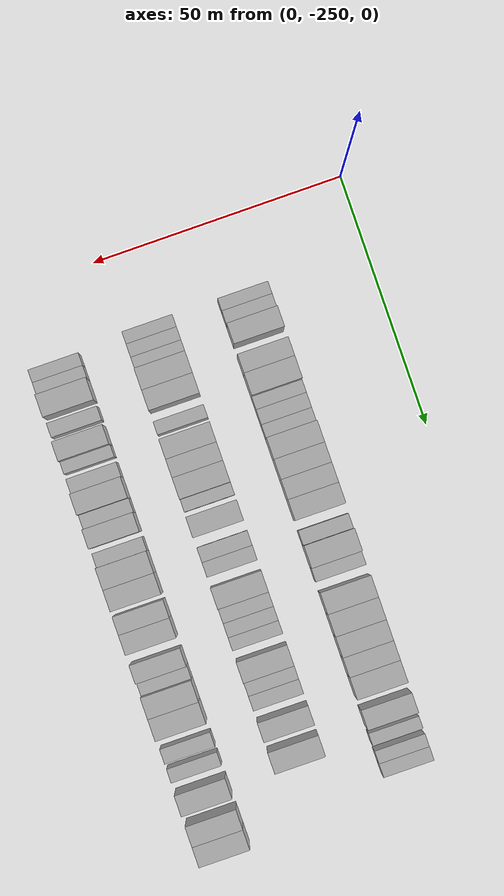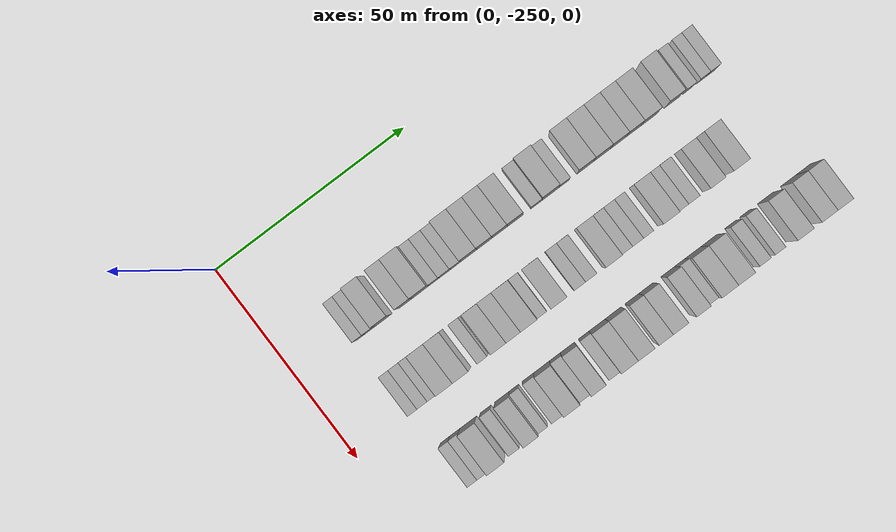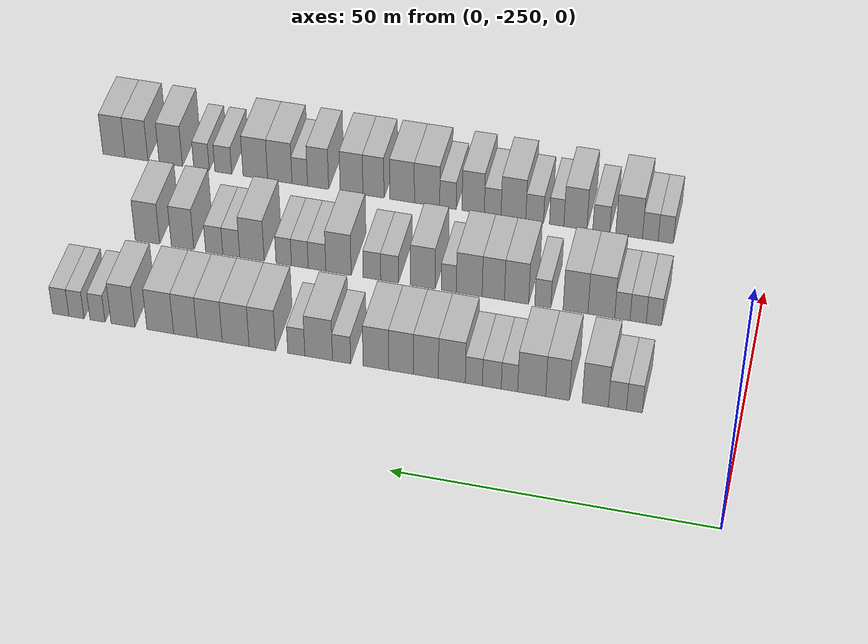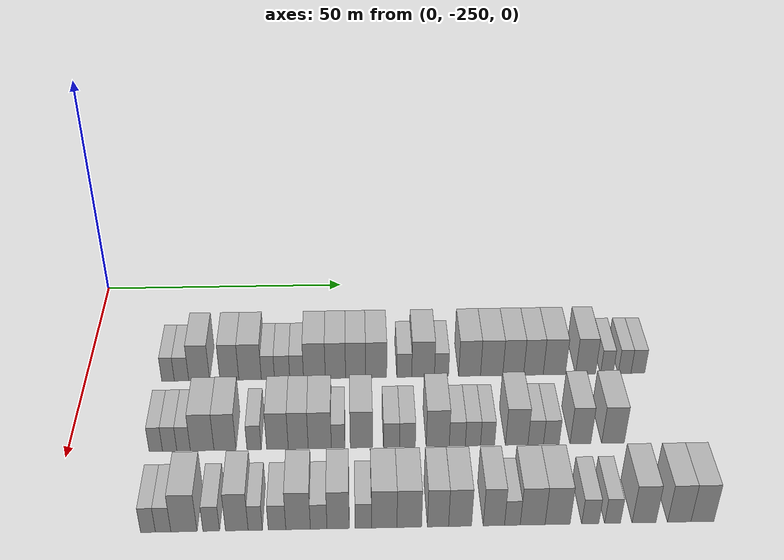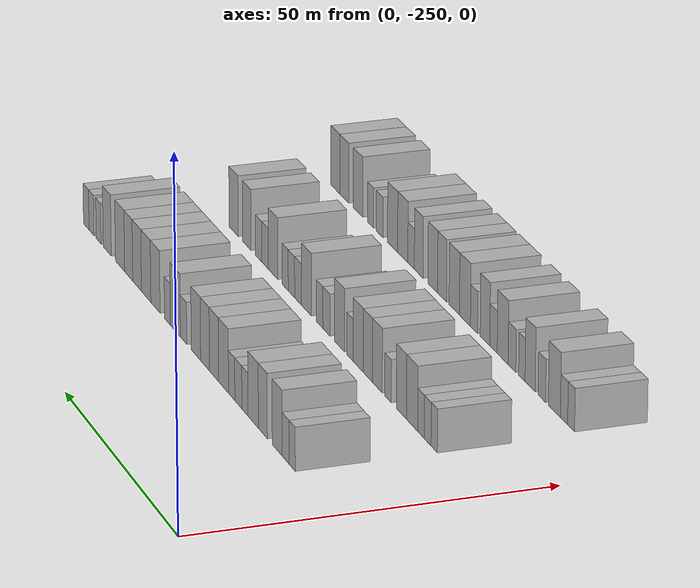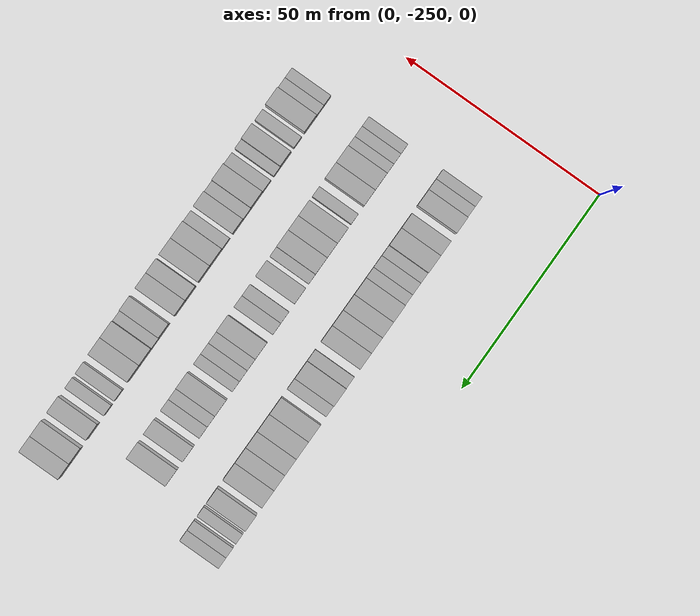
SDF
<sdf version="1.6">
 <world name="default">
  <model name="building_1">
   <static>1</static>
   <pose>25.0000 -233.7699 0 0.000000 0.000000 0.000000</pose>
   <link name="link">
    <pose>0 0 3.00 0 0 0</pose>
    <collision name="collision"><geometry><box><size>10.0000 2.4602 6.0000</size></box></geometry></collision>
    <visual name="visual">
     <cast_shadows>0</cast_shadows>
     <geometry><box><size>10.0000 2.4602 6.0000</size></box></geometry>
     <material>
      <script>
       <uri>model://HANNAS_wall/materials/scripts</uri>
       <uri>model://HANNAS_wall/materials/textures</uri>
       <name>vrc/HANNAS_wall</name>
      </script>
     </material>
    </visual>
   </link>
  </model>
  <model name="building_2">
   <static>1</static>
   <pose>25.0000 -231.1276 0 0.000000 0.000000 0.000000</pose>
   <link name="link">
    <pose>0 0 3.00 0 0 0</pose>
    <collision name="collision"><geometry><box><size>10.0000 2.8243 6.0000</size></box></geometry></collision>
    <visual name="visual">
     <cast_shadows>0</cast_shadows>
     <geometry><box><size>10.0000 2.8243 6.0000</size></box></geometry>
     <material>
      <script>
       <uri>model://HANNAS_wall/materials/scripts</uri>
       <uri>model://HANNAS_wall/materials/textures</uri>
       <name>vrc/HANNAS_wall</name>
      </script>
     </material>
    </visual>
   </link>
  </model>
  <model name="building_3">
   <static>1</static>
   <pose>25.0000 -227.6758 0 0.000000 0.000000 0.000000</pose>
   <link name="link">
    <pose>0 0 4.50 0 0 0</pose>
    <collision name="collision"><geometry><box><size>10.0000 4.0794 9.0000</size></box></geometry></collision>
    <visual name="visual">
     <cast_shadows>0</cast_shadows>
     <geometry><box><size>10.0000 4.0794 9.0000</size></box></geometry>
     <material>
      <script>
       <uri>model://HANNAS_wall/materials/scripts</uri>
       <uri>model://HANNAS_wall/materials/textures</uri>
       <name>vrc/HANNAS_wall</name>
      </script>
     </material>
    </visual>
   </link>
  </model>
  <model name="building_4">
   <static>1</static>
   <pose>25.0000 -221.7807 0 0.000000 0.000000 0.000000</pose>
   <link name="link">
    <pose>0 0 4.50 0 0 0</pose>
    <collision name="collision"><geometry><box><size>10.0000 3.7108 9.0000</size></box></geometry></collision>
    <visual name="visual">
     <cast_shadows>0</cast_shadows>
     <geometry><box><size>10.0000 3.7108 9.0000</size></box></geometry>
     <material>
      <script>
       <uri>model://HANNAS_wall/materials/scripts</uri>
       <uri>model://HANNAS_wall/materials/textures</uri>
       <name>vrc/HANNAS_wall</name>
      </script>
     </material>
    </visual>
   </link>
  </model>
  <model name="building_5">
   <static>1</static>
   <pose>25.0000 -217.7213 0 0.000000 0.000000 0.000000</pose>
   <link name="link">
    <pose>0 0 4.50 0 0 0</pose>
    <collision name="collision"><geometry><box><size>10.0000 4.4080 9.0000</size></box></geometry></collision>
    <visual name="visual">
     <cast_shadows>0</cast_shadows>
     <geometry><box><size>10.0000 4.4080 9.0000</size></box></geometry>
     <material>
      <script>
       <uri>model://HANNAS_wall/materials/scripts</uri>
       <uri>model://HANNAS_wall/materials/textures</uri>
       <name>vrc/HANNAS_wall</name>
      </script>
     </material>
    </visual>
   </link>
  </model>
  <model name="building_6">
   <static>1</static>
   <pose>25.0000 -214.2284 0 0.000000 0.000000 0.000000</pose>
   <link name="link">
    <pose>0 0 3.00 0 0 0</pose>
    <collision name="collision"><geometry><box><size>10.0000 2.5777 6.0000</size></box></geometry></collision>
    <visual name="visual">
     <cast_shadows>0</cast_shadows>
     <geometry><box><size>10.0000 2.5777 6.0000</size></box></geometry>
     <material>
      <script>
       <uri>model://HANNAS_wall/materials/scripts</uri>
       <uri>model://HANNAS_wall/materials/textures</uri>
       <name>vrc/HANNAS_wall</name>
      </script>
     </material>
    </visual>
   </link>
  </model>
  <model name="building_7">
   <static>1</static>
   <pose>25.0000 -211.4436 0 0.000000 0.000000 0.000000</pose>
   <link name="link">
    <pose>0 0 3.00 0 0 0</pose>
    <collision name="collision"><geometry><box><size>10.0000 2.9918 6.0000</size></box></geometry></collision>
    <visual name="visual">
     <cast_shadows>0</cast_shadows>
     <geometry><box><size>10.0000 2.9918 6.0000</size></box></geometry>
     <material>
      <script>
       <uri>model://HANNAS_wall/materials/scripts</uri>
       <uri>model://HANNAS_wall/materials/textures</uri>
       <name>vrc/HANNAS_wall</name>
      </script>
     </material>
    </visual>
   </link>
  </model>
  <model name="building_8">
   <static>1</static>
   <pose>25.0000 -208.5960 0 0.000000 0.000000 0.000000</pose>
   <link name="link">
    <pose>0 0 3.00 0 0 0</pose>
    <collision name="collision"><geometry><box><size>10.0000 2.7034 6.0000</size></box></geometry></collision>
    <visual name="visual">
     <cast_shadows>0</cast_shadows>
     <geometry><box><size>10.0000 2.7034 6.0000</size></box></geometry>
     <material>
      <script>
       <uri>model://HANNAS_wall/materials/scripts</uri>
       <uri>model://HANNAS_wall/materials/textures</uri>
       <name>vrc/HANNAS_wall</name>
      </script>
     </material>
    </visual>
   </link>
  </model>
  <model name="building_9">
   <static>1</static>
   <pose>25.0000 -205.1038 0 0.000000 0.000000 0.000000</pose>
   <link name="link">
    <pose>0 0 4.50 0 0 0</pose>
    <collision name="collision"><geometry><box><size>10.0000 4.2810 9.0000</size></box></geometry></collision>
    <visual name="visual">
     <cast_shadows>0</cast_shadows>
     <geometry><box><size>10.0000 4.2810 9.0000</size></box></geometry>
     <material>
      <script>
       <uri>model://HANNAS_wall/materials/scripts</uri>
       <uri>model://HANNAS_wall/materials/textures</uri>
       <name>vrc/HANNAS_wall</name>
      </script>
     </material>
    </visual>
   </link>
  </model>
  <model name="building_10">
   <static>1</static>
   <pose>25.0000 -200.9737 0 0.000000 0.000000 0.000000</pose>
   <link name="link">
    <pose>0 0 4.50 0 0 0</pose>
    <collision name="collision"><geometry><box><size>10.0000 3.9793 9.0000</size></box></geometry></collision>
    <visual name="visual">
     <cast_shadows>0</cast_shadows>
     <geometry><box><size>10.0000 3.9793 9.0000</size></box></geometry>
     <material>
      <script>
       <uri>model://HANNAS_wall/materials/scripts</uri>
       <uri>model://HANNAS_wall/materials/textures</uri>
       <name>vrc/HANNAS_wall</name>
      </script>
     </material>
    </visual>
   </link>
  </model>
  <model name="building_11">
   <static>1</static>
   <pose>25.0000 -197.0114 0 0.000000 0.000000 0.000000</pose>
   <link name="link">
    <pose>0 0 4.50 0 0 0</pose>
    <collision name="collision"><geometry><box><size>10.0000 3.9452 9.0000</size></box></geometry></collision>
    <visual name="visual">
     <cast_shadows>0</cast_shadows>
     <geometry><box><size>10.0000 3.9452 9.0000</size></box></geometry>
     <material>
      <script>
       <uri>model://HANNAS_wall/materials/scripts</uri>
       <uri>model://HANNAS_wall/materials/textures</uri>
       <name>vrc/HANNAS_wall</name>
      </script>
     </material>
    </visual>
   </link>
  </model>
  <model name="building_12">
   <static>1</static>
   <pose>25.0000 -192.9783 0 0.000000 0.000000 0.000000</pose>
   <link name="link">
    <pose>0 0 4.50 0 0 0</pose>
    <collision name="collision"><geometry><box><size>10.0000 4.1212 9.0000</size></box></geometry></collision>
    <visual name="visual">
     <cast_shadows>0</cast_shadows>
     <geometry><box><size>10.0000 4.1212 9.0000</size></box></geometry>
     <material>
      <script>
       <uri>model://HANNAS_wall/materials/scripts</uri>
       <uri>model://HANNAS_wall/materials/textures</uri>
       <name>vrc/HANNAS_wall</name>
      </script>
     </material>
    </visual>
   </link>
  </model>
  <model name="building_13">
   <static>1</static>
   <pose>25.0000 -187.4523 0 0.000000 0.000000 0.000000</pose>
   <link name="link">
    <pose>0 0 3.00 0 0 0</pose>
    <collision name="collision"><geometry><box><size>10.0000 2.9307 6.0000</size></box></geometry></collision>
    <visual name="visual">
     <cast_shadows>0</cast_shadows>
     <geometry><box><size>10.0000 2.9307 6.0000</size></box></geometry>
     <material>
      <script>
       <uri>model://HANNAS_wall/materials/scripts</uri>
       <uri>model://HANNAS_wall/materials/textures</uri>
       <name>vrc/HANNAS_wall</name>
      </script>
     </material>
    </visual>
   </link>
  </model>
  <model name="building_14">
   <static>1</static>
   <pose>25.0000 -183.7499 0 0.000000 0.000000 0.000000</pose>
   <link name="link">
    <pose>0 0 4.50 0 0 0</pose>
    <collision name="collision"><geometry><box><size>10.0000 4.4742 9.0000</size></box></geometry></collision>
    <visual name="visual">
     <cast_shadows>0</cast_shadows>
     <geometry><box><size>10.0000 4.4742 9.0000</size></box></geometry>
     <material>
      <script>
       <uri>model://HANNAS_wall/materials/scripts</uri>
       <uri>model://HANNAS_wall/materials/textures</uri>
       <name>vrc/HANNAS_wall</name>
      </script>
     </material>
    </visual>
   </link>
  </model>
  <model name="building_15">
   <static>1</static>
   <pose>25.0000 -180.1247 0 0.000000 0.000000 0.000000</pose>
   <link name="link">
    <pose>0 0 3.00 0 0 0</pose>
    <collision name="collision"><geometry><box><size>10.0000 2.7761 6.0000</size></box></geometry></collision>
    <visual name="visual">
     <cast_shadows>0</cast_shadows>
     <geometry><box><size>10.0000 2.7761 6.0000</size></box></geometry>
     <material>
      <script>
       <uri>model://HANNAS_wall/materials/scripts</uri>
       <uri>model://HANNAS_wall/materials/textures</uri>
       <name>vrc/HANNAS_wall</name>
      </script>
     </material>
    </visual>
   </link>
  </model>
  <model name="building_16">
   <static>1</static>
   <pose>25.0000 -174.5823 0 0.000000 0.000000 0.000000</pose>
   <link name="link">
    <pose>0 0 4.50 0 0 0</pose>
    <collision name="collision"><geometry><box><size>10.0000 4.3088 9.0000</size></box></geometry></collision>
    <visual name="visual">
     <cast_shadows>0</cast_shadows>
     <geometry><box><size>10.0000 4.3088 9.0000</size></box></geometry>
     <material>
      <script>
       <uri>model://HANNAS_wall/materials/scripts</uri>
       <uri>model://HANNAS_wall/materials/textures</uri>
       <name>vrc/HANNAS_wall</name>
      </script>
     </material>
    </visual>
   </link>
  </model>
  <model name="building_17">
   <static>1</static>
   <pose>25.0000 -170.2294 0 0.000000 0.000000 0.000000</pose>
   <link name="link">
    <pose>0 0 4.50 0 0 0</pose>
    <collision name="collision"><geometry><box><size>10.0000 4.3968 9.0000</size></box></geometry></collision>
    <visual name="visual">
     <cast_shadows>0</cast_shadows>
     <geometry><box><size>10.0000 4.3968 9.0000</size></box></geometry>
     <material>
      <script>
       <uri>model://HANNAS_wall/materials/scripts</uri>
       <uri>model://HANNAS_wall/materials/textures</uri>
       <name>vrc/HANNAS_wall</name>
      </script>
     </material>
    </visual>
   </link>
  </model>
  <model name="building_18">
   <static>1</static>
   <pose>25.0000 -165.9670 0 0.000000 0.000000 0.000000</pose>
   <link name="link">
    <pose>0 0 4.50 0 0 0</pose>
    <collision name="collision"><geometry><box><size>10.0000 4.1280 9.0000</size></box></geometry></collision>
    <visual name="visual">
     <cast_shadows>0</cast_shadows>
     <geometry><box><size>10.0000 4.1280 9.0000</size></box></geometry>
     <material>
      <script>
       <uri>model://HANNAS_wall/materials/scripts</uri>
       <uri>model://HANNAS_wall/materials/textures</uri>
       <name>vrc/HANNAS_wall</name>
      </script>
     </material>
    </visual>
   </link>
  </model>
  <model name="building_19">
   <static>1</static>
   <pose>25.0000 -161.9690 0 0.000000 0.000000 0.000000</pose>
   <link name="link">
    <pose>0 0 4.50 0 0 0</pose>
    <collision name="collision"><geometry><box><size>10.0000 3.8680 9.0000</size></box></geometry></collision>
    <visual name="visual">
     <cast_shadows>0</cast_shadows>
     <geometry><box><size>10.0000 3.8680 9.0000</size></box></geometry>
     <material>
      <script>
       <uri>model://HANNAS_wall/materials/scripts</uri>
       <uri>model://HANNAS_wall/materials/textures</uri>
       <name>vrc/HANNAS_wall</name>
      </script>
     </material>
    </visual>
   </link>
  </model>
  <model name="building_20">
   <static>1</static>
   <pose>25.0000 -157.8356 0 0.000000 0.000000 0.000000</pose>
   <link name="link">
    <pose>0 0 4.50 0 0 0</pose>
    <collision name="collision"><geometry><box><size>10.0000 4.3988 9.0000</size></box></geometry></collision>
    <visual name="visual">
     <cast_shadows>0</cast_shadows>
     <geometry><box><size>10.0000 4.3988 9.0000</size></box></geometry>
     <material>
      <script>
       <uri>model://HANNAS_wall/materials/scripts</uri>
       <uri>model://HANNAS_wall/materials/textures</uri>
       <name>vrc/HANNAS_wall</name>
      </script>
     </material>
    </visual>
   </link>
  </model>
  <model name="building_21">
   <static>1</static>
   <pose>25.0000 -151.6563 0 0.000000 0.000000 0.000000</pose>
   <link name="link">
    <pose>0 0 4.50 0 0 0</pose>
    <collision name="collision"><geometry><box><size>10.0000 3.9599 9.0000</size></box></geometry></collision>
    <visual name="visual">
     <cast_shadows>0</cast_shadows>
     <geometry><box><size>10.0000 3.9599 9.0000</size></box></geometry>
     <material>
      <script>
       <uri>model://HANNAS_wall/materials/scripts</uri>
       <uri>model://HANNAS_wall/materials/textures</uri>
       <name>vrc/HANNAS_wall</name>
      </script>
     </material>
    </visual>
   </link>
  </model>
  <model name="building_22">
   <static>1</static>
   <pose>25.0000 -147.4264 0 0.000000 0.000000 0.000000</pose>
   <link name="link">
    <pose>0 0 3.00 0 0 0</pose>
    <collision name="collision"><geometry><box><size>10.0000 2.5000 6.0000</size></box></geometry></collision>
    <visual name="visual">
     <cast_shadows>0</cast_shadows>
     <geometry><box><size>10.0000 2.5000 6.0000</size></box></geometry>
     <material>
      <script>
       <uri>model://HANNAS_wall/materials/scripts</uri>
       <uri>model://HANNAS_wall/materials/textures</uri>
       <name>vrc/HANNAS_wall</name>
      </script>
     </material>
    </visual>
   </link>
  </model>
  <model name="building_23">
   <static>1</static>
   <pose>25.0000 -143.9104 0 0.000000 0.000000 0.000000</pose>
   <link name="link">
    <pose>0 0 3.00 0 0 0</pose>
    <collision name="collision"><geometry><box><size>10.0000 2.5320 6.0000</size></box></geometry></collision>
    <visual name="visual">
     <cast_shadows>0</cast_shadows>
     <geometry><box><size>10.0000 2.5320 6.0000</size></box></geometry>
     <material>
      <script>
       <uri>model://HANNAS_wall/materials/scripts</uri>
       <uri>model://HANNAS_wall/materials/textures</uri>
       <name>vrc/HANNAS_wall</name>
      </script>
     </material>
    </visual>
   </link>
  </model>
  <model name="building_24">
   <static>1</static>
   <pose>25.0000 -141.2771 0 0.000000 0.000000 0.000000</pose>
   <link name="link">
    <pose>0 0 3.00 0 0 0</pose>
    <collision name="collision"><geometry><box><size>10.0000 2.7346 6.0000</size></box></geometry></collision>
    <visual name="visual">
     <cast_shadows>0</cast_shadows>
     <geometry><box><size>10.0000 2.7346 6.0000</size></box></geometry>
     <material>
      <script>
       <uri>model://HANNAS_wall/materials/scripts</uri>
       <uri>model://HANNAS_wall/materials/textures</uri>
       <name>vrc/HANNAS_wall</name>
      </script>
     </material>
    </visual>
   </link>
  </model>
  <model name="building_116">
   <static>1</static>
   <pose>44.0000 -233.7776 0 0.000000 0.000000 0.000000</pose>
   <link name="link">
    <pose>0 0 3.00 0 0 0</pose>
    <collision name="collision"><geometry><box><size>10.0000 2.4447 6.0000</size></box></geometry></collision>
    <visual name="visual">
     <cast_shadows>0</cast_shadows>
     <geometry><box><size>10.0000 2.4447 6.0000</size></box></geometry>
     <material>
      <script>
       <uri>model://HANNAS_wall/materials/scripts</uri>
       <uri>model://HANNAS_wall/materials/textures</uri>
       <name>vrc/HANNAS_wall</name>
      </script>
     </material>
    </visual>
   </link>
  </model>
  <model name="building_117">
   <static>1</static>
   <pose>44.0000 -231.2473 0 0.000000 0.000000 0.000000</pose>
   <link name="link">
    <pose>0 0 3.00 0 0 0</pose>
    <collision name="collision"><geometry><box><size>10.0000 2.6159 6.0000</size></box></geometry></collision>
    <visual name="visual">
     <cast_shadows>0</cast_shadows>
     <geometry><box><size>10.0000 2.6159 6.0000</size></box></geometry>
     <material>
      <script>
       <uri>model://HANNAS_wall/materials/scripts</uri>
       <uri>model://HANNAS_wall/materials/textures</uri>
       <name>vrc/HANNAS_wall</name>
      </script>
     </material>
    </visual>
   </link>
  </model>
  <model name="building_118">
   <static>1</static>
   <pose>44.0000 -228.7049 0 0.000000 0.000000 0.000000</pose>
   <link name="link">
    <pose>0 0 3.00 0 0 0</pose>
    <collision name="collision"><geometry><box><size>10.0000 2.4690 6.0000</size></box></geometry></collision>
    <visual name="visual">
     <cast_shadows>0</cast_shadows>
     <geometry><box><size>10.0000 2.4690 6.0000</size></box></geometry>
     <material>
      <script>
       <uri>model://HANNAS_wall/materials/scripts</uri>
       <uri>model://HANNAS_wall/materials/textures</uri>
       <name>vrc/HANNAS_wall</name>
      </script>
     </material>
    </visual>
   </link>
  </model>
  <model name="building_119">
   <static>1</static>
   <pose>44.0000 -225.3154 0 0.000000 0.000000 0.000000</pose>
   <link name="link">
    <pose>0 0 4.50 0 0 0</pose>
    <collision name="collision"><geometry><box><size>10.0000 4.3101 9.0000</size></box></geometry></collision>
    <visual name="visual">
     <cast_shadows>0</cast_shadows>
     <geometry><box><size>10.0000 4.3101 9.0000</size></box></geometry>
     <material>
      <script>
       <uri>model://HANNAS_wall/materials/scripts</uri>
       <uri>model://HANNAS_wall/materials/textures</uri>
       <name>vrc/HANNAS_wall</name>
      </script>
     </material>
    </visual>
   </link>
  </model>
  <model name="building_120">
   <static>1</static>
   <pose>44.0000 -221.1473 0 0.000000 0.000000 0.000000</pose>
   <link name="link">
    <pose>0 0 4.50 0 0 0</pose>
    <collision name="collision"><geometry><box><size>10.0000 4.0261 9.0000</size></box></geometry></collision>
    <visual name="visual">
     <cast_shadows>0</cast_shadows>
     <geometry><box><size>10.0000 4.0261 9.0000</size></box></geometry>
     <material>
      <script>
       <uri>model://HANNAS_wall/materials/scripts</uri>
       <uri>model://HANNAS_wall/materials/textures</uri>
       <name>vrc/HANNAS_wall</name>
      </script>
     </material>
    </visual>
   </link>
  </model>
  <model name="building_121">
   <static>1</static>
   <pose>44.0000 -215.8307 0 0.000000 0.000000 0.000000</pose>
   <link name="link">
    <pose>0 0 3.00 0 0 0</pose>
    <collision name="collision"><geometry><box><size>10.0000 2.6070 6.0000</size></box></geometry></collision>
    <visual name="visual">
     <cast_shadows>0</cast_shadows>
     <geometry><box><size>10.0000 2.6070 6.0000</size></box></geometry>
     <material>
      <script>
       <uri>model://HANNAS_wall/materials/scripts</uri>
       <uri>model://HANNAS_wall/materials/textures</uri>
       <name>vrc/HANNAS_wall</name>
      </script>
     </material>
    </visual>
   </link>
  </model>
  <model name="building_122">
   <static>1</static>
   <pose>44.0000 -211.5503 0 0.000000 0.000000 0.000000</pose>
   <link name="link">
    <pose>0 0 4.50 0 0 0</pose>
    <collision name="collision"><geometry><box><size>10.0000 3.9538 9.0000</size></box></geometry></collision>
    <visual name="visual">
     <cast_shadows>0</cast_shadows>
     <geometry><box><size>10.0000 3.9538 9.0000</size></box></geometry>
     <material>
      <script>
       <uri>model://HANNAS_wall/materials/scripts</uri>
       <uri>model://HANNAS_wall/materials/textures</uri>
       <name>vrc/HANNAS_wall</name>
      </script>
     </material>
    </visual>
   </link>
  </model>
  <model name="building_123">
   <static>1</static>
   <pose>44.0000 -207.7469 0 0.000000 0.000000 0.000000</pose>
   <link name="link">
    <pose>0 0 4.50 0 0 0</pose>
    <collision name="collision"><geometry><box><size>10.0000 3.6530 9.0000</size></box></geometry></collision>
    <visual name="visual">
     <cast_shadows>0</cast_shadows>
     <geometry><box><size>10.0000 3.6530 9.0000</size></box></geometry>
     <material>
      <script>
       <uri>model://HANNAS_wall/materials/scripts</uri>
       <uri>model://HANNAS_wall/materials/textures</uri>
       <name>vrc/HANNAS_wall</name>
      </script>
     </material>
    </visual>
   </link>
  </model>
  <model name="building_124">
   <static>1</static>
   <pose>44.0000 -203.7959 0 0.000000 0.000000 0.000000</pose>
   <link name="link">
    <pose>0 0 4.50 0 0 0</pose>
    <collision name="collision"><geometry><box><size>10.0000 4.2490 9.0000</size></box></geometry></collision>
    <visual name="visual">
     <cast_shadows>0</cast_shadows>
     <geometry><box><size>10.0000 4.2490 9.0000</size></box></geometry>
     <material>
      <script>
       <uri>model://HANNAS_wall/materials/scripts</uri>
       <uri>model://HANNAS_wall/materials/textures</uri>
       <name>vrc/HANNAS_wall</name>
      </script>
     </material>
    </visual>
   </link>
  </model>
  <model name="building_125">
   <static>1</static>
   <pose>44.0000 -200.4332 0 0.000000 0.000000 0.000000</pose>
   <link name="link">
    <pose>0 0 3.00 0 0 0</pose>
    <collision name="collision"><geometry><box><size>10.0000 2.4765 6.0000</size></box></geometry></collision>
    <visual name="visual">
     <cast_shadows>0</cast_shadows>
     <geometry><box><size>10.0000 2.4765 6.0000</size></box></geometry>
     <material>
      <script>
       <uri>model://HANNAS_wall/materials/scripts</uri>
       <uri>model://HANNAS_wall/materials/textures</uri>
       <name>vrc/HANNAS_wall</name>
      </script>
     </material>
    </visual>
   </link>
  </model>
  <model name="building_126">
   <static>1</static>
   <pose>44.0000 -196.1544 0 0.000000 0.000000 0.000000</pose>
   <link name="link">
    <pose>0 0 4.50 0 0 0</pose>
    <collision name="collision"><geometry><box><size>10.0000 4.0811 9.0000</size></box></geometry></collision>
    <visual name="visual">
     <cast_shadows>0</cast_shadows>
     <geometry><box><size>10.0000 4.0811 9.0000</size></box></geometry>
     <material>
      <script>
       <uri>model://HANNAS_wall/materials/scripts</uri>
       <uri>model://HANNAS_wall/materials/textures</uri>
       <name>vrc/HANNAS_wall</name>
      </script>
     </material>
    </visual>
   </link>
  </model>
  <model name="building_127">
   <static>1</static>
   <pose>44.0000 -190.6446 0 0.000000 0.000000 0.000000</pose>
   <link name="link">
    <pose>0 0 3.00 0 0 0</pose>
    <collision name="collision"><geometry><box><size>10.0000 2.9384 6.0000</size></box></geometry></collision>
    <visual name="visual">
     <cast_shadows>0</cast_shadows>
     <geometry><box><size>10.0000 2.9384 6.0000</size></box></geometry>
     <material>
      <script>
       <uri>model://HANNAS_wall/materials/scripts</uri>
       <uri>model://HANNAS_wall/materials/textures</uri>
       <name>vrc/HANNAS_wall</name>
      </script>
     </material>
    </visual>
   </link>
  </model>
  <model name="building_128">
   <static>1</static>
   <pose>44.0000 -187.7156 0 0.000000 0.000000 0.000000</pose>
   <link name="link">
    <pose>0 0 3.00 0 0 0</pose>
    <collision name="collision"><geometry><box><size>10.0000 2.9197 6.0000</size></box></geometry></collision>
    <visual name="visual">
     <cast_shadows>0</cast_shadows>
     <geometry><box><size>10.0000 2.9197 6.0000</size></box></geometry>
     <material>
      <script>
       <uri>model://HANNAS_wall/materials/scripts</uri>
       <uri>model://HANNAS_wall/materials/textures</uri>
       <name>vrc/HANNAS_wall</name>
      </script>
     </material>
    </visual>
   </link>
  </model>
  <model name="building_129">
   <static>1</static>
   <pose>44.0000 -182.1388 0 0.000000 0.000000 0.000000</pose>
   <link name="link">
    <pose>0 0 4.50 0 0 0</pose>
    <collision name="collision"><geometry><box><size>10.0000 4.2337 9.0000</size></box></geometry></collision>
    <visual name="visual">
     <cast_shadows>0</cast_shadows>
     <geometry><box><size>10.0000 4.2337 9.0000</size></box></geometry>
     <material>
      <script>
       <uri>model://HANNAS_wall/materials/scripts</uri>
       <uri>model://HANNAS_wall/materials/textures</uri>
       <name>vrc/HANNAS_wall</name>
      </script>
     </material>
    </visual>
   </link>
  </model>
  <model name="building_130">
   <static>1</static>
   <pose>44.0000 -178.5384 0 0.000000 0.000000 0.000000</pose>
   <link name="link">
    <pose>0 0 3.00 0 0 0</pose>
    <collision name="collision"><geometry><box><size>10.0000 2.9672 6.0000</size></box></geometry></collision>
    <visual name="visual">
     <cast_shadows>0</cast_shadows>
     <geometry><box><size>10.0000 2.9672 6.0000</size></box></geometry>
     <material>
      <script>
       <uri>model://HANNAS_wall/materials/scripts</uri>
       <uri>model://HANNAS_wall/materials/textures</uri>
       <name>vrc/HANNAS_wall</name>
      </script>
     </material>
    </visual>
   </link>
  </model>
  <model name="building_131">
   <static>1</static>
   <pose>44.0000 -175.6535 0 0.000000 0.000000 0.000000</pose>
   <link name="link">
    <pose>0 0 3.00 0 0 0</pose>
    <collision name="collision"><geometry><box><size>10.0000 2.8026 6.0000</size></box></geometry></collision>
    <visual name="visual">
     <cast_shadows>0</cast_shadows>
     <geometry><box><size>10.0000 2.8026 6.0000</size></box></geometry>
     <material>
      <script>
       <uri>model://HANNAS_wall/materials/scripts</uri>
       <uri>model://HANNAS_wall/materials/textures</uri>
       <name>vrc/HANNAS_wall</name>
      </script>
     </material>
    </visual>
   </link>
  </model>
  <model name="building_132">
   <static>1</static>
   <pose>44.0000 -172.9520 0 0.000000 0.000000 0.000000</pose>
   <link name="link">
    <pose>0 0 3.00 0 0 0</pose>
    <collision name="collision"><geometry><box><size>10.0000 2.6005 6.0000</size></box></geometry></collision>
    <visual name="visual">
     <cast_shadows>0</cast_shadows>
     <geometry><box><size>10.0000 2.6005 6.0000</size></box></geometry>
     <material>
      <script>
       <uri>model://HANNAS_wall/materials/scripts</uri>
       <uri>model://HANNAS_wall/materials/textures</uri>
       <name>vrc/HANNAS_wall</name>
      </script>
     </material>
    </visual>
   </link>
  </model>
  <model name="building_133">
   <static>1</static>
   <pose>44.0000 -167.5758 0 0.000000 0.000000 0.000000</pose>
   <link name="link">
    <pose>0 0 4.50 0 0 0</pose>
    <collision name="collision"><geometry><box><size>10.0000 4.1518 9.0000</size></box></geometry></collision>
    <visual name="visual">
     <cast_shadows>0</cast_shadows>
     <geometry><box><size>10.0000 4.1518 9.0000</size></box></geometry>
     <material>
      <script>
       <uri>model://HANNAS_wall/materials/scripts</uri>
       <uri>model://HANNAS_wall/materials/textures</uri>
       <name>vrc/HANNAS_wall</name>
      </script>
     </material>
    </visual>
   </link>
  </model>
  <model name="building_134">
   <static>1</static>
   <pose>44.0000 -164.0635 0 0.000000 0.000000 0.000000</pose>
   <link name="link">
    <pose>0 0 3.00 0 0 0</pose>
    <collision name="collision"><geometry><box><size>10.0000 2.8728 6.0000</size></box></geometry></collision>
    <visual name="visual">
     <cast_shadows>0</cast_shadows>
     <geometry><box><size>10.0000 2.8728 6.0000</size></box></geometry>
     <material>
      <script>
       <uri>model://HANNAS_wall/materials/scripts</uri>
       <uri>model://HANNAS_wall/materials/textures</uri>
       <name>vrc/HANNAS_wall</name>
      </script>
     </material>
    </visual>
   </link>
  </model>
  <model name="building_135">
   <static>1</static>
   <pose>44.0000 -161.1713 0 0.000000 0.000000 0.000000</pose>
   <link name="link">
    <pose>0 0 3.00 0 0 0</pose>
    <collision name="collision"><geometry><box><size>10.0000 2.9117 6.0000</size></box></geometry></collision>
    <visual name="visual">
     <cast_shadows>0</cast_shadows>
     <geometry><box><size>10.0000 2.9117 6.0000</size></box></geometry>
     <material>
      <script>
       <uri>model://HANNAS_wall/materials/scripts</uri>
       <uri>model://HANNAS_wall/materials/textures</uri>
       <name>vrc/HANNAS_wall</name>
      </script>
     </material>
    </visual>
   </link>
  </model>
  <model name="building_136">
   <static>1</static>
   <pose>44.0000 -155.7925 0 0.000000 0.000000 0.000000</pose>
   <link name="link">
    <pose>0 0 4.50 0 0 0</pose>
    <collision name="collision"><geometry><box><size>10.0000 3.8459 9.0000</size></box></geometry></collision>
    <visual name="visual">
     <cast_shadows>0</cast_shadows>
     <geometry><box><size>10.0000 3.8459 9.0000</size></box></geometry>
     <material>
      <script>
       <uri>model://HANNAS_wall/materials/scripts</uri>
       <uri>model://HANNAS_wall/materials/textures</uri>
       <name>vrc/HANNAS_wall</name>
      </script>
     </material>
    </visual>
   </link>
  </model>
  <model name="building_137">
   <static>1</static>
   <pose>44.0000 -149.7716 0 0.000000 0.000000 0.000000</pose>
   <link name="link">
    <pose>0 0 4.50 0 0 0</pose>
    <collision name="collision"><geometry><box><size>10.0000 4.1959 9.0000</size></box></geometry></collision>
    <visual name="visual">
     <cast_shadows>0</cast_shadows>
     <geometry><box><size>10.0000 4.1959 9.0000</size></box></geometry>
     <material>
      <script>
       <uri>model://HANNAS_wall/materials/scripts</uri>
       <uri>model://HANNAS_wall/materials/textures</uri>
       <name>vrc/HANNAS_wall</name>
      </script>
     </material>
    </visual>
   </link>
  </model>
  <model name="building_235">
   <static>1</static>
   <pose>63.0000 -232.7420 0 0.000000 0.000000 0.000000</pose>
   <link name="link">
    <pose>0 0 3.00 0 0 0</pose>
    <collision name="collision"><geometry><box><size>10.0000 2.5160 6.0000</size></box></geometry></collision>
    <visual name="visual">
     <cast_shadows>0</cast_shadows>
     <geometry><box><size>10.0000 2.5160 6.0000</size></box></geometry>
     <material>
      <script>
       <uri>model://HANNAS_wall/materials/scripts</uri>
       <uri>model://HANNAS_wall/materials/textures</uri>
       <name>vrc/HANNAS_wall</name>
      </script>
     </material>
    </visual>
   </link>
  </model>
  <model name="building_236">
   <static>1</static>
   <pose>63.0000 -230.1716 0 0.000000 0.000000 0.000000</pose>
   <link name="link">
    <pose>0 0 3.00 0 0 0</pose>
    <collision name="collision"><geometry><box><size>10.0000 2.6248 6.0000</size></box></geometry></collision>
    <visual name="visual">
     <cast_shadows>0</cast_shadows>
     <geometry><box><size>10.0000 2.6248 6.0000</size></box></geometry>
     <material>
      <script>
       <uri>model://HANNAS_wall/materials/scripts</uri>
       <uri>model://HANNAS_wall/materials/textures</uri>
       <name>vrc/HANNAS_wall</name>
      </script>
     </material>
    </visual>
   </link>
  </model>
  <model name="building_237">
   <static>1</static>
   <pose>63.0000 -226.6398 0 0.000000 0.000000 0.000000</pose>
   <link name="link">
    <pose>0 0 4.50 0 0 0</pose>
    <collision name="collision"><geometry><box><size>10.0000 4.4389 9.0000</size></box></geometry></collision>
    <visual name="visual">
     <cast_shadows>0</cast_shadows>
     <geometry><box><size>10.0000 4.4389 9.0000</size></box></geometry>
     <material>
      <script>
       <uri>model://HANNAS_wall/materials/scripts</uri>
       <uri>model://HANNAS_wall/materials/textures</uri>
       <name>vrc/HANNAS_wall</name>
      </script>
     </material>
    </visual>
   </link>
  </model>
  <model name="building_238">
   <static>1</static>
   <pose>63.0000 -222.0043 0 0.000000 0.000000 0.000000</pose>
   <link name="link">
    <pose>0 0 3.00 0 0 0</pose>
    <collision name="collision"><geometry><box><size>10.0000 2.8320 6.0000</size></box></geometry></collision>
    <visual name="visual">
     <cast_shadows>0</cast_shadows>
     <geometry><box><size>10.0000 2.8320 6.0000</size></box></geometry>
     <material>
      <script>
       <uri>model://HANNAS_wall/materials/scripts</uri>
       <uri>model://HANNAS_wall/materials/textures</uri>
       <name>vrc/HANNAS_wall</name>
      </script>
     </material>
    </visual>
   </link>
  </model>
  <model name="building_239">
   <static>1</static>
   <pose>63.0000 -217.6636 0 0.000000 0.000000 0.000000</pose>
   <link name="link">
    <pose>0 0 4.50 0 0 0</pose>
    <collision name="collision"><geometry><box><size>10.0000 3.8495 9.0000</size></box></geometry></collision>
    <visual name="visual">
     <cast_shadows>0</cast_shadows>
     <geometry><box><size>10.0000 3.8495 9.0000</size></box></geometry>
     <material>
      <script>
       <uri>model://HANNAS_wall/materials/scripts</uri>
       <uri>model://HANNAS_wall/materials/textures</uri>
       <name>vrc/HANNAS_wall</name>
      </script>
     </material>
    </visual>
   </link>
  </model>
  <model name="building_240">
   <static>1</static>
   <pose>63.0000 -214.5272 0 0.000000 0.000000 0.000000</pose>
   <link name="link">
    <pose>0 0 3.00 0 0 0</pose>
    <collision name="collision"><geometry><box><size>10.0000 2.4234 6.0000</size></box></geometry></collision>
    <visual name="visual">
     <cast_shadows>0</cast_shadows>
     <geometry><box><size>10.0000 2.4234 6.0000</size></box></geometry>
     <material>
      <script>
       <uri>model://HANNAS_wall/materials/scripts</uri>
       <uri>model://HANNAS_wall/materials/textures</uri>
       <name>vrc/HANNAS_wall</name>
      </script>
     </material>
    </visual>
   </link>
  </model>
  <model name="building_241">
   <static>1</static>
   <pose>63.0000 -210.8207 0 0.000000 0.000000 0.000000</pose>
   <link name="link">
    <pose>0 0 3.00 0 0 0</pose>
    <collision name="collision"><geometry><box><size>10.0000 2.9896 6.0000</size></box></geometry></collision>
    <visual name="visual">
     <cast_shadows>0</cast_shadows>
     <geometry><box><size>10.0000 2.9896 6.0000</size></box></geometry>
     <material>
      <script>
       <uri>model://HANNAS_wall/materials/scripts</uri>
       <uri>model://HANNAS_wall/materials/textures</uri>
       <name>vrc/HANNAS_wall</name>
      </script>
     </material>
    </visual>
   </link>
  </model>
  <model name="building_242">
   <static>1</static>
   <pose>63.0000 -207.2343 0 0.000000 0.000000 0.000000</pose>
   <link name="link">
    <pose>0 0 4.50 0 0 0</pose>
    <collision name="collision"><geometry><box><size>10.0000 4.1832 9.0000</size></box></geometry></collision>
    <visual name="visual">
     <cast_shadows>0</cast_shadows>
     <geometry><box><size>10.0000 4.1832 9.0000</size></box></geometry>
     <material>
      <script>
       <uri>model://HANNAS_wall/materials/scripts</uri>
       <uri>model://HANNAS_wall/materials/textures</uri>
       <name>vrc/HANNAS_wall</name>
      </script>
     </material>
    </visual>
   </link>
  </model>
  <model name="building_243">
   <static>1</static>
   <pose>63.0000 -203.7254 0 0.000000 0.000000 0.000000</pose>
   <link name="link">
    <pose>0 0 3.00 0 0 0</pose>
    <collision name="collision"><geometry><box><size>10.0000 2.8346 6.0000</size></box></geometry></collision>
    <visual name="visual">
     <cast_shadows>0</cast_shadows>
     <geometry><box><size>10.0000 2.8346 6.0000</size></box></geometry>
     <material>
      <script>
       <uri>model://HANNAS_wall/materials/scripts</uri>
       <uri>model://HANNAS_wall/materials/textures</uri>
       <name>vrc/HANNAS_wall</name>
      </script>
     </material>
    </visual>
   </link>
  </model>
  <model name="building_244">
   <static>1</static>
   <pose>63.0000 -200.4076 0 0.000000 0.000000 0.000000</pose>
   <link name="link">
    <pose>0 0 4.50 0 0 0</pose>
    <collision name="collision"><geometry><box><size>10.0000 3.8011 9.0000</size></box></geometry></collision>
    <visual name="visual">
     <cast_shadows>0</cast_shadows>
     <geometry><box><size>10.0000 3.8011 9.0000</size></box></geometry>
     <material>
      <script>
       <uri>model://HANNAS_wall/materials/scripts</uri>
       <uri>model://HANNAS_wall/materials/textures</uri>
       <name>vrc/HANNAS_wall</name>
      </script>
     </material>
    </visual>
   </link>
  </model>
  <model name="building_245">
   <static>1</static>
   <pose>63.0000 -196.1116 0 0.000000 0.000000 0.000000</pose>
   <link name="link">
    <pose>0 0 3.00 0 0 0</pose>
    <collision name="collision"><geometry><box><size>10.0000 2.7909 6.0000</size></box></geometry></collision>
    <visual name="visual">
     <cast_shadows>0</cast_shadows>
     <geometry><box><size>10.0000 2.7909 6.0000</size></box></geometry>
     <material>
      <script>
       <uri>model://HANNAS_wall/materials/scripts</uri>
       <uri>model://HANNAS_wall/materials/textures</uri>
       <name>vrc/HANNAS_wall</name>
      </script>
     </material>
    </visual>
   </link>
  </model>
  <model name="building_246">
   <static>1</static>
   <pose>63.0000 -192.5466 0 0.000000 0.000000 0.000000</pose>
   <link name="link">
    <pose>0 0 4.50 0 0 0</pose>
    <collision name="collision"><geometry><box><size>10.0000 4.3392 9.0000</size></box></geometry></collision>
    <visual name="visual">
     <cast_shadows>0</cast_shadows>
     <geometry><box><size>10.0000 4.3392 9.0000</size></box></geometry>
     <material>
      <script>
       <uri>model://HANNAS_wall/materials/scripts</uri>
       <uri>model://HANNAS_wall/materials/textures</uri>
       <name>vrc/HANNAS_wall</name>
      </script>
     </material>
    </visual>
   </link>
  </model>
  <model name="building_247">
   <static>1</static>
   <pose>63.0000 -188.2728 0 0.000000 0.000000 0.000000</pose>
   <link name="link">
    <pose>0 0 4.50 0 0 0</pose>
    <collision name="collision"><geometry><box><size>10.0000 4.2084 9.0000</size></box></geometry></collision>
    <visual name="visual">
     <cast_shadows>0</cast_shadows>
     <geometry><box><size>10.0000 4.2084 9.0000</size></box></geometry>
     <material>
      <script>
       <uri>model://HANNAS_wall/materials/scripts</uri>
       <uri>model://HANNAS_wall/materials/textures</uri>
       <name>vrc/HANNAS_wall</name>
      </script>
     </material>
    </visual>
   </link>
  </model>
  <model name="building_248">
   <static>1</static>
   <pose>63.0000 -183.3543 0 0.000000 0.000000 0.000000</pose>
   <link name="link">
    <pose>0 0 4.50 0 0 0</pose>
    <collision name="collision"><geometry><box><size>10.0000 3.6286 9.0000</size></box></geometry></collision>
    <visual name="visual">
     <cast_shadows>0</cast_shadows>
     <geometry><box><size>10.0000 3.6286 9.0000</size></box></geometry>
     <material>
      <script>
       <uri>model://HANNAS_wall/materials/scripts</uri>
       <uri>model://HANNAS_wall/materials/textures</uri>
       <name>vrc/HANNAS_wall</name>
      </script>
     </material>
    </visual>
   </link>
  </model>
  <model name="building_249">
   <static>1</static>
   <pose>63.0000 -179.5743 0 0.000000 0.000000 0.000000</pose>
   <link name="link">
    <pose>0 0 4.50 0 0 0</pose>
    <collision name="collision"><geometry><box><size>10.0000 3.9313 9.0000</size></box></geometry></collision>
    <visual name="visual">
     <cast_shadows>0</cast_shadows>
     <geometry><box><size>10.0000 3.9313 9.0000</size></box></geometry>
     <material>
      <script>
       <uri>model://HANNAS_wall/materials/scripts</uri>
       <uri>model://HANNAS_wall/materials/textures</uri>
       <name>vrc/HANNAS_wall</name>
      </script>
     </material>
    </visual>
   </link>
  </model>
  <model name="building_250">
   <static>1</static>
   <pose>63.0000 -173.7796 0 0.000000 0.000000 0.000000</pose>
   <link name="link">
    <pose>0 0 4.50 0 0 0</pose>
    <collision name="collision"><geometry><box><size>10.0000 3.6580 9.0000</size></box></geometry></collision>
    <visual name="visual">
     <cast_shadows>0</cast_shadows>
     <geometry><box><size>10.0000 3.6580 9.0000</size></box></geometry>
     <material>
      <script>
       <uri>model://HANNAS_wall/materials/scripts</uri>
       <uri>model://HANNAS_wall/materials/textures</uri>
       <name>vrc/HANNAS_wall</name>
      </script>
     </material>
    </visual>
   </link>
  </model>
  <model name="building_251">
   <static>1</static>
   <pose>63.0000 -170.6042 0 0.000000 0.000000 0.000000</pose>
   <link name="link">
    <pose>0 0 3.00 0 0 0</pose>
    <collision name="collision"><geometry><box><size>10.0000 2.6927 6.0000</size></box></geometry></collision>
    <visual name="visual">
     <cast_shadows>0</cast_shadows>
     <geometry><box><size>10.0000 2.6927 6.0000</size></box></geometry>
     <material>
      <script>
       <uri>model://HANNAS_wall/materials/scripts</uri>
       <uri>model://HANNAS_wall/materials/textures</uri>
       <name>vrc/HANNAS_wall</name>
      </script>
     </material>
    </visual>
   </link>
  </model>
  <model name="building_252">
   <static>1</static>
   <pose>63.0000 -167.1231 0 0.000000 0.000000 0.000000</pose>
   <link name="link">
    <pose>0 0 4.50 0 0 0</pose>
    <collision name="collision"><geometry><box><size>10.0000 4.2695 9.0000</size></box></geometry></collision>
    <visual name="visual">
     <cast_shadows>0</cast_shadows>
     <geometry><box><size>10.0000 4.2695 9.0000</size></box></geometry>
     <material>
      <script>
       <uri>model://HANNAS_wall/materials/scripts</uri>
       <uri>model://HANNAS_wall/materials/textures</uri>
       <name>vrc/HANNAS_wall</name>
      </script>
     </material>
    </visual>
   </link>
  </model>
  <model name="building_253">
   <static>1</static>
   <pose>63.0000 -162.8418 0 0.000000 0.000000 0.000000</pose>
   <link name="link">
    <pose>0 0 4.50 0 0 0</pose>
    <collision name="collision"><geometry><box><size>10.0000 4.2931 9.0000</size></box></geometry></collision>
    <visual name="visual">
     <cast_shadows>0</cast_shadows>
     <geometry><box><size>10.0000 4.2931 9.0000</size></box></geometry>
     <material>
      <script>
       <uri>model://HANNAS_wall/materials/scripts</uri>
       <uri>model://HANNAS_wall/materials/textures</uri>
       <name>vrc/HANNAS_wall</name>
      </script>
     </material>
    </visual>
   </link>
  </model>
  <model name="building_254">
   <static>1</static>
   <pose>63.0000 -157.2216 0 0.000000 0.000000 0.000000</pose>
   <link name="link">
    <pose>0 0 3.00 0 0 0</pose>
    <collision name="collision"><geometry><box><size>10.0000 2.9472 6.0000</size></box></geometry></collision>
    <visual name="visual">
     <cast_shadows>0</cast_shadows>
     <geometry><box><size>10.0000 2.9472 6.0000</size></box></geometry>
     <material>
      <script>
       <uri>model://HANNAS_wall/materials/scripts</uri>
       <uri>model://HANNAS_wall/materials/textures</uri>
       <name>vrc/HANNAS_wall</name>
      </script>
     </material>
    </visual>
   </link>
  </model>
  <model name="building_255">
   <static>1</static>
   <pose>63.0000 -153.3813 0 0.000000 0.000000 0.000000</pose>
   <link name="link">
    <pose>0 0 3.00 0 0 0</pose>
    <collision name="collision"><geometry><box><size>10.0000 2.7334 6.0000</size></box></geometry></collision>
    <visual name="visual">
     <cast_shadows>0</cast_shadows>
     <geometry><box><size>10.0000 2.7334 6.0000</size></box></geometry>
     <material>
      <script>
       <uri>model://HANNAS_wall/materials/scripts</uri>
       <uri>model://HANNAS_wall/materials/textures</uri>
       <name>vrc/HANNAS_wall</name>
      </script>
     </material>
    </visual>
   </link>
  </model>
  <model name="building_256">
   <static>1</static>
   <pose>63.0000 -147.9571 0 0.000000 0.000000 0.000000</pose>
   <link name="link">
    <pose>0 0 4.50 0 0 0</pose>
    <collision name="collision"><geometry><box><size>10.0000 4.1149 9.0000</size></box></geometry></collision>
    <visual name="visual">
     <cast_shadows>0</cast_shadows>
     <geometry><box><size>10.0000 4.1149 9.0000</size></box></geometry>
     <material>
      <script>
       <uri>model://HANNAS_wall/materials/scripts</uri>
       <uri>model://HANNAS_wall/materials/textures</uri>
       <name>vrc/HANNAS_wall</name>
      </script>
     </material>
    </visual>
   </link>
  </model>
  <model name="building_257">
   <static>1</static>
   <pose>63.0000 -141.8816 0 0.000000 0.000000 0.000000</pose>
   <link name="link">
    <pose>0 0 4.50 0 0 0</pose>
    <collision name="collision"><geometry><box><size>10.0000 4.0362 9.0000</size></box></geometry></collision>
    <visual name="visual">
     <cast_shadows>0</cast_shadows>
     <geometry><box><size>10.0000 4.0362 9.0000</size></box></geometry>
     <material>
      <script>
       <uri>model://HANNAS_wall/materials/scripts</uri>
       <uri>model://HANNAS_wall/materials/textures</uri>
       <name>vrc/HANNAS_wall</name>
      </script>
     </material>
    </visual>
   </link>
  </model>
  <model name="building_258">
   <static>1</static>
   <pose>63.0000 -137.8793 0 0.000000 0.000000 0.000000</pose>
   <link name="link">
    <pose>0 0 4.50 0 0 0</pose>
    <collision name="collision"><geometry><box><size>10.0000 3.9683 9.0000</size></box></geometry></collision>
    <visual name="visual">
     <cast_shadows>0</cast_shadows>
     <geometry><box><size>10.0000 3.9683 9.0000</size></box></geometry>
     <material>
      <script>
       <uri>model://HANNAS_wall/materials/scripts</uri>
       <uri>model://HANNAS_wall/materials/textures</uri>
       <name>vrc/HANNAS_wall</name>
      </script>
     </material>
    </visual>
   </link>
  </model>
 </world>
</sdf>
